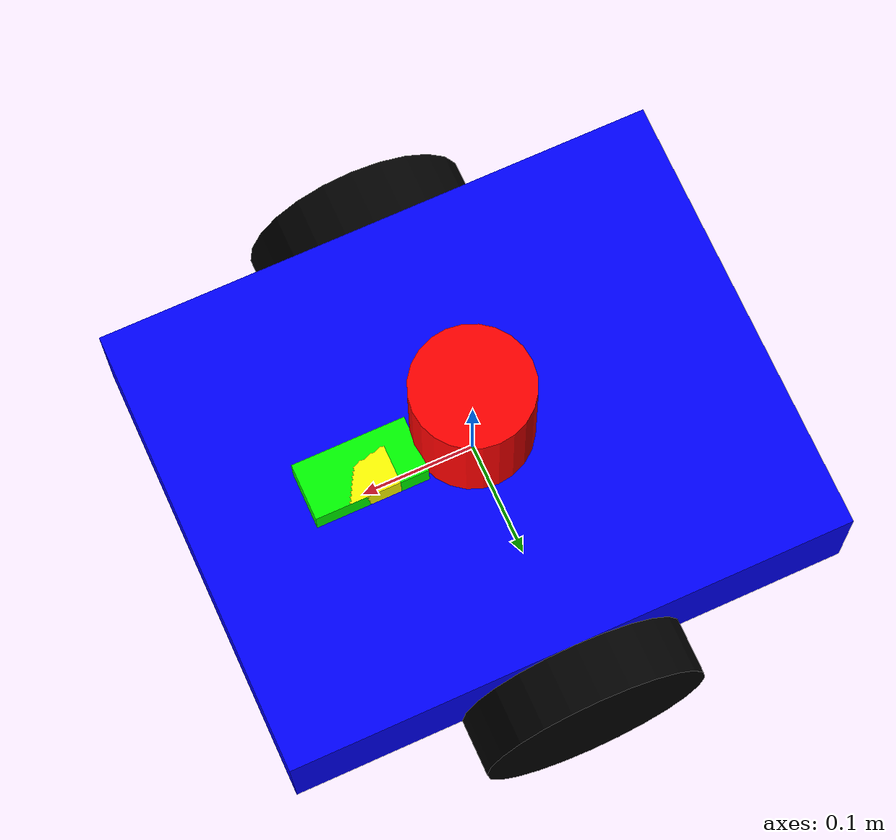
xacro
<robot name="simple_robot" xmlns:xacro="http://www.ros.org/wiki/xacro">
    <xacro:property name="wheel_radius" value="0.1"/>
    <xacro:property name="wheel_width" value="0.05"/>
    <xacro:property name="wheel_mass" value="0.2"/>
    <xacro:property name="wheel_ixx" value="${(1.0 / 12.0) * wheel_mass * (3.0 * wheel_radius * wheel_radius + wheel_width * wheel_width)}"/>
    <xacro:property name="wheel_iyy" value="${0.5 * wheel_mass * wheel_radius * wheel_radius}"/>
    <xacro:property name="wheel_izz" value="${wheel_ixx}"/>

    <!-- Base link of the robot -->
    <link name="base_link">
        <visual>
            <geometry>
                <box size="0.5 0.4 0.1"/>
            </geometry>
            <material name="blue">
                <color rgba="0 0 1 1"/>
            </material>
        </visual>
        <collision>
        <geometry>
            <box size="0.5 0.4 0.1"/>
        </geometry>
        </collision>
        <inertial>
            <mass value="1.0"/>
            <origin xyz="0 0 0" rpy="0 0 0"/>
            <inertia ixx="0.5" ixy="0.0" ixz="0.0" iyy="0.5" iyz="0.0" izz="0.5"/>
        </inertial>

    </link>

    <gazebo reference="base_link">
        <material>Gazebo/Blue</material>
    </gazebo>

    <!-- Macro to define a wheel link and its joint -->
    <xacro:macro name="wheel" params="name y_offset">
        <link name="${name}">
            <visual>
                <origin xyz="0.0 0.0 0.0" rpy="1.5708 0.0 0.0"/>
                <geometry>
                    <cylinder radius="${wheel_radius}" length="${wheel_width}"/>
                </geometry>
                <material name="black">
                    <color rgba="0 0 0 1"/>
                </material>
            </visual>
            <collision>
                <origin xyz="0.0 0.0 0.0" rpy="1.5708 0.0 0.0"/>
                <geometry>
                    <cylinder radius="${wheel_radius}" length="${wheel_width}"/>
                </geometry>
            </collision>
            <inertial>
                <mass value="${wheel_mass}"/>
                <origin xyz="0.0 0.0 0.0" rpy="0.0 0.0 0.0"/>
                <inertia ixx="${wheel_ixx}" ixy="0.0" ixz="0.0" iyy="${wheel_iyy}" iyz="0.0" izz="${wheel_izz}"/>
            </inertial>
        </link>
        <joint name="${name}_joint" type="continuous">
            <parent link="base_link"/>
            <child link="${name}"/>
            <origin xyz="0.0 ${y_offset} -0.05" rpy="0.0 0.0 0.0"/>
            <axis xyz="0.0 1.0 0.0"/>
        </joint>
    </xacro:macro>

    <!-- Use the wheel macro to create left and right wheels -->
    <xacro:wheel name="left_wheel" y_offset="0.225"/>
    <xacro:wheel name="right_wheel" y_offset="-0.225"/>

    <!-- Add lidar link and joint-->
    <link name="lidar_link">
        <visual>
            <geometry>
                <cylinder radius="0.05" length="0.1"/>
            </geometry>
            <material name="red">
                <color rgba="1 0 0 1"/>
            </material>
        </visual>
        <collision>
            <geometry>
                <cylinder radius="0.05" length="0.1"/>
            </geometry>
        </collision>
        <inertial>
            <mass value="0.5"/>
            <origin xyz="0.0 0.0 0.0" rpy="0.0 0.0 0.0"/>
            <inertia ixx="0.01" ixy="0.0" ixz="0.0" iyy="0.01" iyz="0.0" izz="0.01"/>
        </inertial>
    </link>
    <link name ="lidar_spinner_link">
        <visual>
            <geometry>
                <cylinder length="0.12" radius="0.052"/>
            </geometry>
            <material name="red">
                <color rgba="1 0 0 1"/>
            </material>
        </visual>
        <inertial>
            <mass value="0.05"/>
            <origin xyz="0.0 0.0 0.0" rpy="0.0 0.0 0.0"/>
            <inertia ixx="0.0001" ixy="0.0" ixz="0.0" iyy="0.0001" iyz="0.0" izz="0.0001"/>
        </inertial>
    </link>

    <joint name="lidar_joint" type="fixed">
        <parent link="base_link"/>
        <child link="lidar_link"/>
        <origin xyz="0.0 0.0 0.1" rpy="0.0 0.0 0.0"/>
    </joint>

    <joint name="lidar_spinner_joint" type="continuous">
        <parent link="lidar_link"/>
        <child link="lidar_spinner_link"/>
        <origin xyz="0.0 0.0 0.0" rpy="0.0 0.0 0.0"/>
        <axis xyz="0.0 0.0 1.0"/>
    </joint>

    <!-- Add lidar gazebo GPU reference -->
    <gazebo reference="lidar_link">
        <material>Gazebo/Red</material>

        <sensor name= "lidar_sensor" type="gpu_lidar">
            <always_on>true</always_on>
            <visualize>true</visualize>
            <update_rate>10</update_rate>
            <topic>/scan</topic>
            <lidar>
                <scan>
                    <horizontal>
                        <samples>720</samples>
                        <resolution>1</resolution>
                        <min_angle>-3.14159</min_angle>
                        <max_angle>3.14159</max_angle>
                    </horizontal>
                </scan>
                <range>
                    <min>0.1</min>
                    <max>10.0</max>
                    <resolution>0.01</resolution>
                </range>
            </lidar>
        </sensor>
    </gazebo>

    <!-- Add Differential drive -->
    <gazebo>
        <plugin
        filename="gz-sim-diff-drive-system"
        name="gz::sim::systems::DiffDrive" >
            <left_joint>left_wheel_joint</left_joint>
            <right_joint>right_wheel_joint</right_joint>
            <wheel_separation>0.4</wheel_separation>
            <wheel_radius>0.1</wheel_radius>
            <odom_topic>/odom</odom_topic>
            <cmd_vel_topic>/cmd_vel</cmd_vel_topic>
            <tf_topic>/tf</tf_topic>
            <frame_id>odom</frame_id>
            <child_frame_id>base_link</child_frame_id>
            <odom_publish_frequency>50</odom_publish_frequency>
            <max_linear_velocity>1.0</max_linear_velocity>
            <max_angular_velocity>2.0</max_angular_velocity>
            <min_linear_velocity>-1.0</min_linear_velocity>
            <min_angular_velocity>-2.0</min_angular_velocity>
            <max_acceleration>1.0</max_acceleration>
            <max_angular_acceleration>2.0</max_angular_acceleration>
        </plugin>
    </gazebo>

    <!-- Add camera link and joint -->
    <link name="camera_link">
        <visual>
            <geometry>
                <box size="0.1 0.05 0.05"/>
            </geometry>
            <material name="green">
                <color rgba="0 1 0 1"/>
            </material>
        </visual>
    </link>
    <joint name="camera_joint" type="fixed">
        <parent link="base_link"/>
        <child link="camera_link"/>
        <origin xyz="0.1 0.0 0.05" rpy="0.0 0.0 0.0"/>
    </joint>

    <gazebo reference="camera_link">
        <sensor name="camera_sensor" type="camera">
            <always_on>true</always_on>
            <update_rate>30</update_rate>
            <topic>/camera/image_raw</topic>
            <camera>
                <horizontal_fov>1.3962634</horizontal_fov>
                <image>
                    <width>640</width>
                    <height>480</height>
                    <format>R8G8B8</format>
                </image>
                <clip>
                    <near>0.1</near>
                    <far>100</far>
                </clip>
            </camera>
        </sensor>
    </gazebo>

    <!-- Add camera optical frame -->
    <link name="camera_optical_frame">
        <visual>
            <geometry>
                <box size="0.05 0.05 0.05"/>
            </geometry>
            <material name="yellow">
                <color rgba="1 1 0 1"/>
            </material>
        </visual>
    </link>
    <joint name="camera_optical_joint" type="fixed">
        <parent link="camera_link"/>
        <child link="camera_optical_frame"/>
        <origin xyz="0.0 0.0 0.0" rpy="-1.5708 0.0 -1.5708"/>
    </joint>

</robot>
